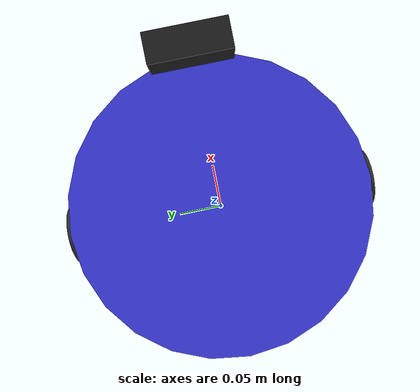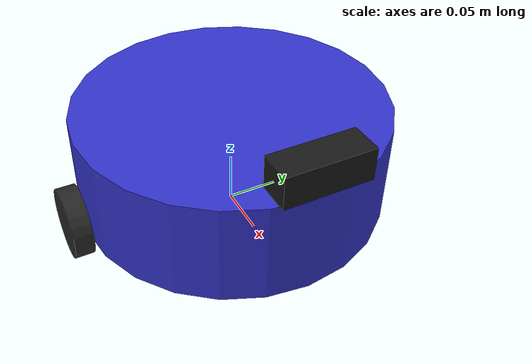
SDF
<?xml version="1.0" ?>
<sdf version="1.9">
  <model name="docking_robot">

    <!-- Root link at ground level. Wheels will lift body naturally. -->
    <link name="base_link">
      <pose>0 0 0.065 0 0 0</pose>
      <inertial>
        <mass>2.0</mass>
        <inertia>
          <ixx>0.0042</ixx><ixy>0</ixy><ixz>0</ixz>
          <iyy>0.0042</iyy><iyz>0</iyz>
          <izz>0.0075</izz>
        </inertia>
      </inertial>

      <!-- Chassis body -->
      <collision name="base_collision">
        <geometry>
          <cylinder><radius>0.15</radius><length>0.10</length></cylinder>
        </geometry>
      </collision>
      <visual name="base_visual">
        <geometry>
          <cylinder><radius>0.15</radius><length>0.10</length></cylinder>
        </geometry>
        <material>
          <ambient>0.2 0.2 0.8 1</ambient>
          <diffuse>0.2 0.2 0.8 1</diffuse>
        </material>
      </visual>

      <!-- Caster: zero-friction sphere fused to chassis -->
      <collision name="caster_collision">
        <pose>-0.10 0 -0.048 0 0 0</pose>
        <geometry>
          <sphere><radius>0.017</radius></sphere>
        </geometry>
        <surface>
          <friction><ode><mu>0.0</mu><mu2>0.0</mu2></ode></friction>
        </surface>
      </collision>
      <visual name="caster_visual">
        <pose>-0.10 0 -0.048 0 0 0</pose>
        <geometry><sphere><radius>0.017</radius></sphere></geometry>
        <material><ambient>0.5 0.5 0.5 1</ambient><diffuse>0.5 0.5 0.5 1</diffuse></material>
      </visual>

      <!-- Camera box visual -->
      <visual name="camera_visual">
        <pose>0.15 0 0.08 0 0 0</pose>
        <geometry><box><size>0.03 0.08 0.03</size></box></geometry>
        <material><ambient>0.1 0.1 0.1 1</ambient><diffuse>0.1 0.1 0.1 1</diffuse></material>
      </visual>

      <!-- Camera sensor embedded in base_link -->
      <sensor name="camera" type="camera">
        <pose>0.15 0 0.08 0 0 0</pose>
        <camera>
          <horizontal_fov>1.3962634</horizontal_fov>
          <image><width>640</width><height>480</height><format>R8G8B8</format></image>
          <clip><near>0.02</near><far>300</far></clip>
        </camera>
        <always_on>1</always_on>
        <update_rate>30</update_rate>
        <visualize>false</visualize>
        <topic>camera/image_raw</topic>
      </sensor>
    </link>

    <!-- ==== LEFT WHEEL ==== -->
    <joint name="left_wheel_joint" type="revolute">
      <parent>base_link</parent>
      <child>left_wheel</child>
      <pose relative_to="base_link">0 0.16 -0.033 0 0 0</pose>
      <axis>
        <xyz>0 1 0</xyz>
        <limit><lower>-inf</lower><upper>inf</upper></limit>
        <dynamics><damping>0.001</damping></dynamics>
      </axis>
    </joint>
    <link name="left_wheel">
      <pose relative_to="left_wheel_joint">0 0 0 0 0 0</pose>
      <inertial>
        <mass>0.15</mass>
        <inertia>
          <ixx>0.000082</ixx><ixy>0</ixy><ixz>0</ixz>
          <iyy>0.000082</iyy><iyz>0</iyz>
          <izz>0.000082</izz>
        </inertia>
      </inertial>
      <collision name="left_wheel_collision">
        <pose>0 0 0 1.5707963 0 0</pose>
        <geometry><cylinder><radius>0.033</radius><length>0.018</length></cylinder></geometry>
        <surface><friction><ode><mu>1.5</mu><mu2>1.5</mu2></ode></friction></surface>
      </collision>
      <visual name="left_wheel_visual">
        <pose>0 0 0 1.5707963 0 0</pose>
        <geometry><cylinder><radius>0.033</radius><length>0.018</length></cylinder></geometry>
        <material><ambient>0.15 0.15 0.15 1</ambient><diffuse>0.15 0.15 0.15 1</diffuse></material>
      </visual>
    </link>

    <!-- ==== RIGHT WHEEL ==== -->
    <joint name="right_wheel_joint" type="revolute">
      <parent>base_link</parent>
      <child>right_wheel</child>
      <pose relative_to="base_link">0 -0.16 -0.033 0 0 0</pose>
      <axis>
        <xyz>0 1 0</xyz>
        <limit><lower>-inf</lower><upper>inf</upper></limit>
        <dynamics><damping>0.001</damping></dynamics>
      </axis>
    </joint>
    <link name="right_wheel">
      <pose relative_to="right_wheel_joint">0 0 0 0 0 0</pose>
      <inertial>
        <mass>0.15</mass>
        <inertia>
          <ixx>0.000082</ixx><ixy>0</ixy><ixz>0</ixz>
          <iyy>0.000082</iyy><iyz>0</iyz>
          <izz>0.000082</izz>
        </inertia>
      </inertial>
      <collision name="right_wheel_collision">
        <pose>0 0 0 1.5707963 0 0</pose>
        <geometry><cylinder><radius>0.033</radius><length>0.018</length></cylinder></geometry>
        <surface><friction><ode><mu>1.5</mu><mu2>1.5</mu2></ode></friction></surface>
      </collision>
      <visual name="right_wheel_visual">
        <pose>0 0 0 1.5707963 0 0</pose>
        <geometry><cylinder><radius>0.033</radius><length>0.018</length></cylinder></geometry>
        <material><ambient>0.15 0.15 0.15 1</ambient><diffuse>0.15 0.15 0.15 1</diffuse></material>
      </visual>
    </link>

    <plugin filename="gz-sim-diff-drive-system"
            name="gz::sim::systems::DiffDrive">
      <left_joint>left_wheel_joint</left_joint>
      <right_joint>right_wheel_joint</right_joint>
      <wheel_separation>0.32</wheel_separation>
      <wheel_radius>0.033</wheel_radius>
      <odom_publish_frequency>50</odom_publish_frequency>
      <topic>cmd_vel</topic>
      <odom_topic>odom</odom_topic>
      <tf_topic>tf</tf_topic>
      <frame_id>odom</frame_id>
      <child_frame_id>base_link</child_frame_id>
    </plugin>

  </model>
</sdf>
